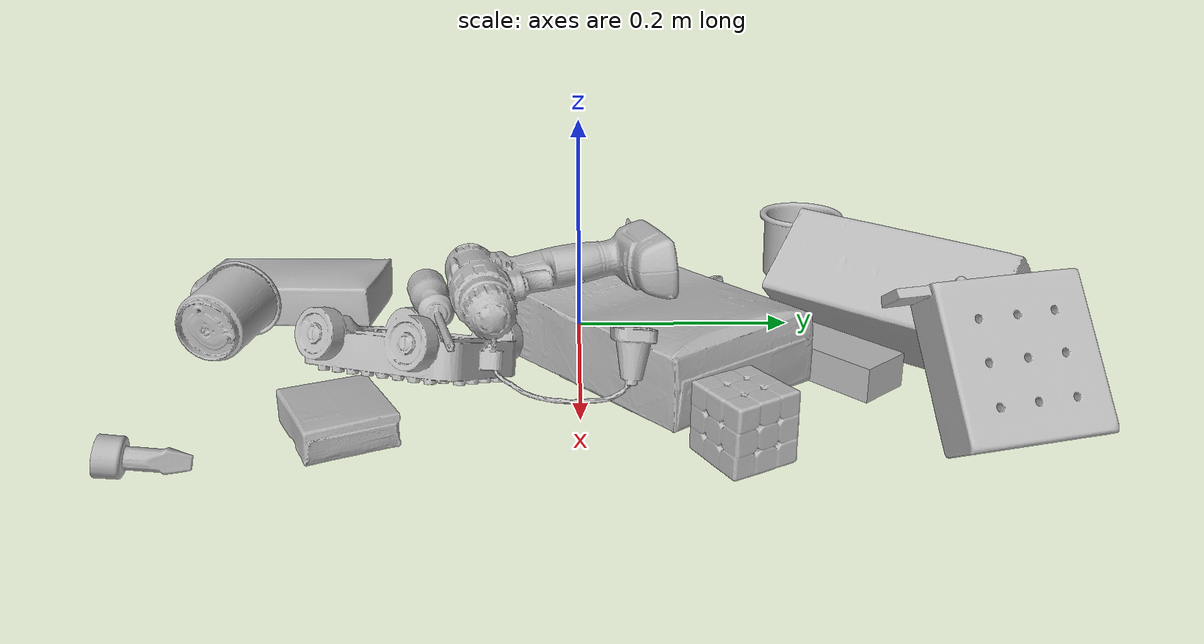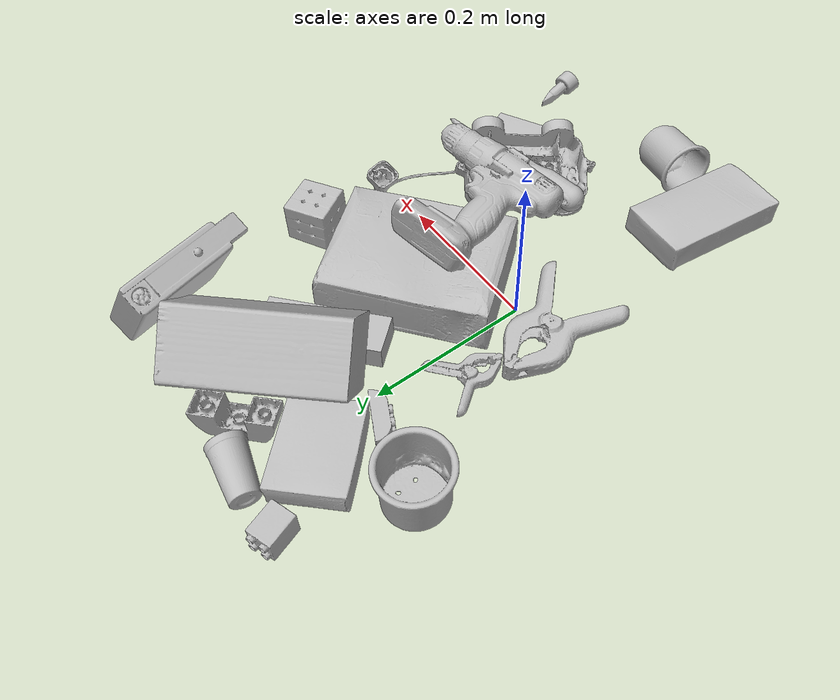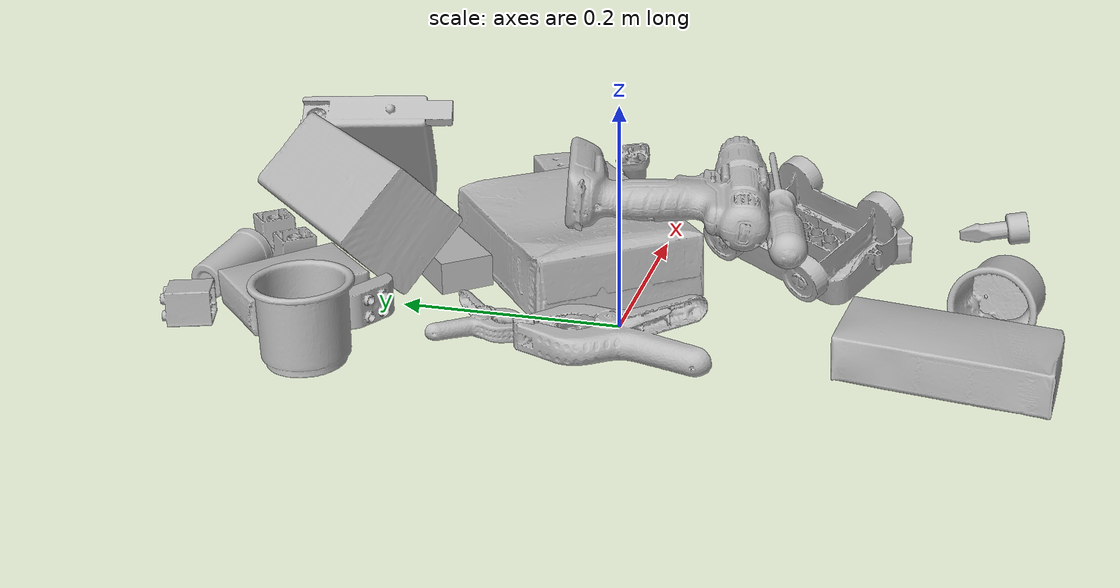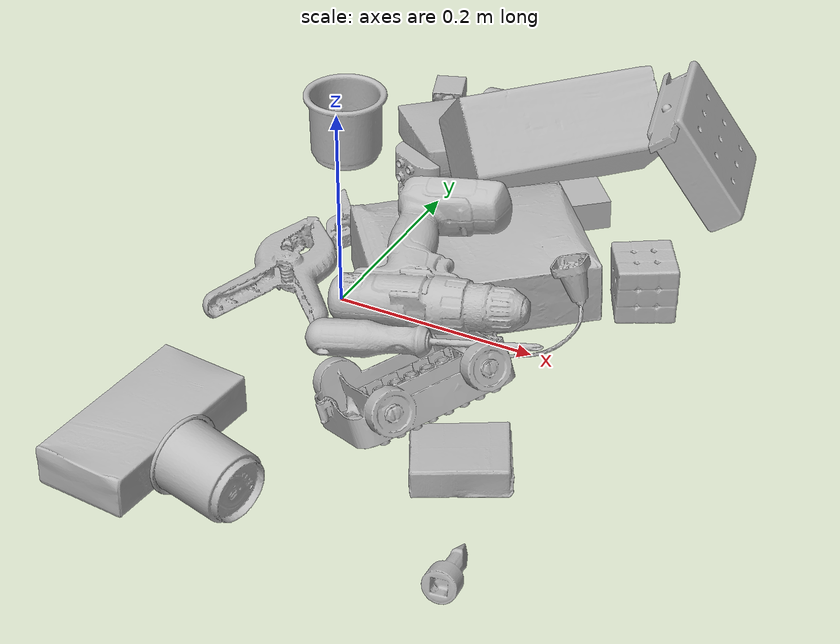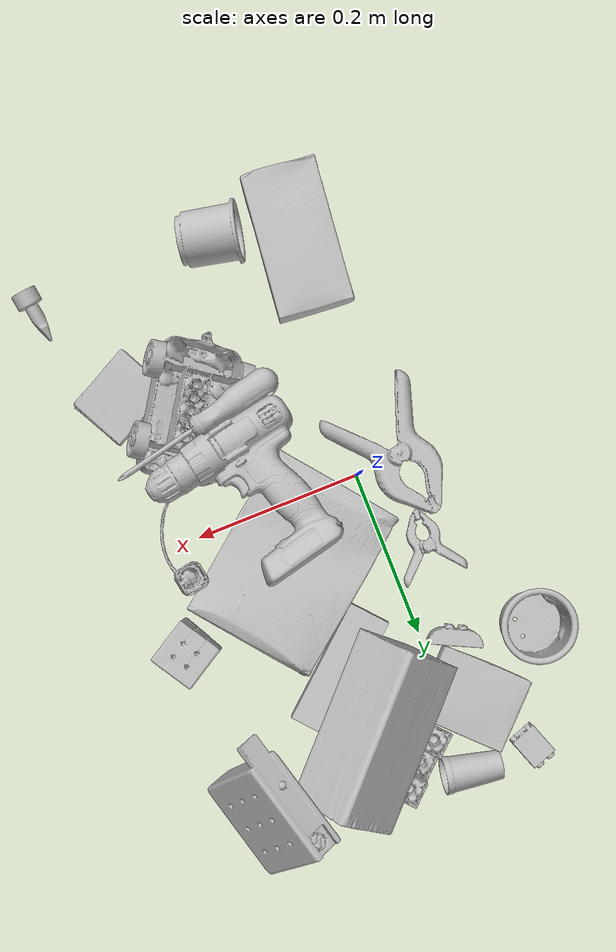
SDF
<sdf version="1.4">
  <world name="default">
    <light name="light1" type="point">
      <pose>0 0 1 0 0 0</pose>
      <diffuse>3 3 3 1</diffuse>
      <specular>3 3 3 1</specular>
    </light>
    <light name="light2" type="point">
      <pose>0 0.5 2 0 0 0</pose>
      <diffuse>1 1 1 1</diffuse>
      <specular>1 1 1 1</specular>
    </light>
    <light name="light3" type="point">
      <pose>0 0.5 2 0 0 0</pose>
      <diffuse>3 3 3 1</diffuse>
      <specular>3 3 3 1</specular>
    </light>
    <scene>
      <ambient>0.7 0.7 0.7</ambient>
    </scene>
    <model name="box21">
      <link name="link_box21">
        <collision name="default">
          <geometry>
            <mesh>
              <uri>model://cracker_box/collision_meshes/collision.obj</uri>
              <scale>1.0 1.0 1.0</scale>
            </mesh>
          </geometry>
          <surface>
            <friction>
              <ode>
                <mu>0.5</mu>
                <mu2>0.5</mu2>
              </ode>
            </friction>
          <contact>
        <ode>
            <max_vel>0</max_vel>
            <min_depth>0.0001</min_depth>
            <kp>1e8</kp>
        </ode>
    </contact></surface>
        </collision>
        <visual name="default">
          <geometry>
            <mesh>
              <uri>model://cracker_box/visual_meshes/visual.dae</uri>
              <scale>1.0 1.0 1.0</scale>
            </mesh>
          </geometry>
        </visual>
        <inertial>
          <mass>2.590176582336426</mass>
          <pose>0.0009464152390137315 0.00025434247800149024 -0.0017029535956680775 -0.0003162072774594163 -0.011106486806667554 0.0025467954652388498</pose>
          <inertia>
            <ixx>0.0065882523</ixx>
            <iyy>0.0108785</iyy>
            <izz>0.015524619</izz>
            <ixy>0</ixy>
            <ixz>0</ixz>
            <iyz>0</iyz>
          </inertia>
        </inertial>
      </link>
      <pose>0.10662852227687836 0.06745849549770355 0.03638406842947006 -0.014046323855364093 -0.005016419550134823 0.672836980480069</pose>
    </model>
    <model name="box22">
      <link name="link_box22">
        <collision name="default">
          <geometry>
            <mesh>
              <uri>model://gelatin_box/collision_meshes/collision.obj</uri>
              <scale>1.0 1.0 1.0</scale>
            </mesh>
          </geometry>
          <surface>
            <friction>
              <ode>
                <mu>0.5</mu>
                <mu2>0.5</mu2>
              </ode>
            </friction>
          <contact>
        <ode>
            <max_vel>0</max_vel>
            <min_depth>0.0001</min_depth>
            <kp>1e8</kp>
        </ode>
    </contact></surface>
        </collision>
        <visual name="default">
          <geometry>
            <mesh>
              <uri>model://gelatin_box/visual_meshes/visual.dae</uri>
              <scale>1.0 1.0 1.0</scale>
            </mesh>
          </geometry>
        </visual>
        <inertial>
          <mass>0.25047940015792847</mass>
          <pose>0.0004319618456065655 0.00011156871914863586 -0.0003640321083366871 -0.0010503719848663328 -0.004755819155031653 0.016440561334722496</pose>
          <inertia>
            <ixx>0.00017681804</ixx>
            <iyy>0.00012630019</iyy>
            <izz>0.0002691564</izz>
            <ixy>0</ixy>
            <ixz>0</ixz>
            <iyz>0</iyz>
          </inertia>
        </inertial>
      </link>
      <pose>0.22248254716396332 -0.18602178990840912 0.01458105631172657 -3.1258322960743565 -0.02568068954582607 -1.0873540034447045</pose>
    </model>
    <model name="box23">
      <link name="link_box23">
        <collision name="default">
          <geometry>
            <mesh>
              <uri>model://pudding_box/collision_meshes/collision.obj</uri>
              <scale>1.0 1.0 1.0</scale>
            </mesh>
          </geometry>
          <surface>
            <friction>
              <ode>
                <mu>0.5</mu>
                <mu2>0.5</mu2>
              </ode>
            </friction>
          <contact>
        <ode>
            <max_vel>0</max_vel>
            <min_depth>0.0001</min_depth>
            <kp>1e8</kp>
        </ode>
    </contact></surface>
        </collision>
        <visual name="default">
          <geometry>
            <mesh>
              <uri>model://pudding_box/visual_meshes/visual.dae</uri>
              <scale>1.0 1.0 1.0</scale>
            </mesh>
          </geometry>
        </visual>
        <inertial>
          <mass>0.39469316601753235</mass>
          <pose>0.0004894821904599667 0.000806788622867316 -0.0005188827635720372 0.005213100892100292 -0.006603796836808699 0.020079821441474487</pose>
          <inertia>
            <ixx>0.00044618026</ixx>
            <iyy>0.00030019323</iyy>
            <izz>0.00065890176</izz>
            <ixy>0</ixy>
            <ixz>0</ixz>
            <iyz>0</iyz>
          </inertia>
        </inertial>
      </link>
      <pose>-0.029706155881285667 0.29140806198120117 0.01972581446170807 0.022371764199078808 -0.011391579306443122 -2.359479923704536</pose>
    </model>
    <model name="cup1">
      <link name="link_cup1">
        <collision name="default">
          <geometry>
            <mesh>
              <uri>model://cup_small/collision_meshes/collision.obj</uri>
              <scale>1.0 1.0 1.0</scale>
            </mesh>
          </geometry>
          <surface>
            <friction>
              <ode>
                <mu>0.5</mu>
                <mu2>0.5</mu2>
              </ode>
            </friction>
          <contact>
        <ode>
            <max_vel>0</max_vel>
            <min_depth>0.0001</min_depth>
            <kp>1e8</kp>
        </ode>
    </contact></surface>
        </collision>
        <visual name="default">
          <geometry>
            <mesh>
              <uri>model://cup_small/visual_meshes/visual.dae</uri>
              <scale>1.0 1.0 1.0</scale>
            </mesh>
          </geometry>
        </visual>
        <inertial>
          <mass>0.021035347133874893</mass>
          <pose>0.0001048244594130665 -0.0003377834218554199 -0.010742821730673313 -0.011493211249102088 -0.015280240526329824 -0.5058153233609384</pose>
          <inertia>
            <ixx>1.2385285e-05</ixx>
            <iyy>1.2449176e-05</iyy>
            <izz>5.591994e-06</izz>
            <ixy>0</ixy>
            <ixz>0</ixz>
            <iyz>0</iyz>
          </inertia>
        </inertial>
      </link>
      <pose>0.0019369013607501984 0.3698262572288513 0.019974566996097565 -1.4626799535290513 -0.60707869005908 -1.8169991384143798</pose>
    </model>
    <model name="cup2">
      <link name="link_cup2">
        <collision name="default">
          <geometry>
            <mesh>
              <uri>model://e_cups/collision_meshes/collision.obj</uri>
              <scale>1.0 1.0 1.0</scale>
            </mesh>
          </geometry>
          <surface>
            <friction>
              <ode>
                <mu>0.5</mu>
                <mu2>0.5</mu2>
              </ode>
            </friction>
          <contact>
        <ode>
            <max_vel>0</max_vel>
            <min_depth>0.0001</min_depth>
            <kp>1e8</kp>
        </ode>
    </contact></surface>
        </collision>
        <visual name="default">
          <geometry>
            <mesh>
              <uri>model://e_cups/visual_meshes/visual.dae</uri>
              <scale>1.0 1.0 1.0</scale>
            </mesh>
          </geometry>
        </visual>
        <inertial>
          <mass>0.053841520100831985</mass>
          <pose>0.0011355747701600194 0.0028797851409763098 -0.0038829720579087734 0.69523823542345 0.08767615215021585 -0.5235238319868403</pose>
          <inertia>
            <ixx>4.7474743e-05</ixx>
            <iyy>4.9617902e-05</iyy>
            <izz>4.5391338e-05</izz>
            <ixy>0</ixy>
            <ixz>0</ixz>
            <iyz>0</iyz>
          </inertia>
        </inertial>
      </link>
      <pose>0.05648671090602875 -0.32026147842407227 0.03480248898267746 -1.334397845817999 1.169861228979799 1.5688959094863122</pose>
    </model>
    <model name="box11">
      <link name="link_box11">
        <collision name="default">
          <geometry>
            <mesh>
              <uri>model://jenga/collision_meshes/collision.obj</uri>
              <scale>1.0 1.0 1.0</scale>
            </mesh>
          </geometry>
          <surface>
            <friction>
              <ode>
                <mu>0.5</mu>
                <mu2>0.5</mu2>
              </ode>
            </friction>
          <contact>
        <ode>
            <max_vel>0</max_vel>
            <min_depth>0.0001</min_depth>
            <kp>1e8</kp>
        </ode>
    </contact></surface>
        </collision>
        <visual name="default">
          <geometry>
            <mesh>
              <uri>model://jenga/visual_meshes/visual.dae</uri>
              <scale>1.0 1.0 1.0</scale>
            </mesh>
          </geometry>
        </visual>
        <inertial>
          <mass>0.26362571120262146</mass>
          <pose>-2.502855807051674e-07 -0.00010250010382151231 -4.0923401684267446e-05 0.0 -7.342155186052628e-07 0.0</pose>
          <inertia>
            <ixx>7.295163e-05</ixx>
            <iyy>0.0004943182</iyy>
            <izz>0.0005277267</izz>
            <ixy>0</ixy>
            <ixz>0</ixz>
            <iyz>0</iyz>
          </inertia>
        </inertial>
      </link>
      <pose>0.10185908526182175 0.2038985788822174 0.014999891631305218 -3.3172274174600206e-05 2.1229881900678422e-06 0.7137308544518748</pose>
    </model>
    <model name="box12">
      <link name="link_box12">
        <collision name="default">
          <geometry>
            <mesh>
              <uri>model://rubiks_cube/collision_meshes/collision.obj</uri>
              <scale>1.0 1.0 1.0</scale>
            </mesh>
          </geometry>
          <surface>
            <friction>
              <ode>
                <mu>0.5</mu>
                <mu2>0.5</mu2>
              </ode>
            </friction>
          <contact>
        <ode>
            <max_vel>0</max_vel>
            <min_depth>0.0001</min_depth>
            <kp>1e8</kp>
        </ode>
    </contact></surface>
        </collision>
        <visual name="default">
          <geometry>
            <mesh>
              <uri>model://rubiks_cube/visual_meshes/visual.dae</uri>
              <scale>1.0 1.0 1.0</scale>
            </mesh>
          </geometry>
        </visual>
        <inertial>
          <mass>0.2476155012845993</mass>
          <pose>2.6721041649580002e-05 5.256966323941015e-05 -7.2643156272533815e-06 -0.05467269607811095 -0.09813983501015876 -0.034455733913541106</pose>
          <inertia>
            <ixx>0.00013682418</ixx>
            <iyy>0.0001361861</iyy>
            <izz>0.00013795799</izz>
            <ixy>0</ixy>
            <ixz>0</ixz>
            <iyz>0</iyz>
          </inertia>
        </inertial>
      </link>
      <pose>0.2598986029624939 0.11937886476516724 0.0286790132522583 2.1390239069708014e-08 3.60761829626869e-09 2.106212993762186</pose>
    </model>
    <model name="box13">
      <link name="link_box13">
        <collision name="default">
          <geometry>
            <mesh>
              <uri>model://sugar_box/collision_meshes/collision.obj</uri>
              <scale>1.0 1.0 1.0</scale>
            </mesh>
          </geometry>
          <surface>
            <friction>
              <ode>
                <mu>0.5</mu>
                <mu2>0.5</mu2>
              </ode>
            </friction>
          <contact>
        <ode>
            <max_vel>0</max_vel>
            <min_depth>0.0001</min_depth>
            <kp>1e8</kp>
        </ode>
    </contact></surface>
        </collision>
        <visual name="default">
          <geometry>
            <mesh>
              <uri>model://sugar_box/visual_meshes/visual.dae</uri>
              <scale>1.0 1.0 1.0</scale>
            </mesh>
          </geometry>
        </visual>
        <inertial>
          <mass>0.6861893534660339</mass>
          <pose>0.0010343727190047503 3.849109634757042e-05 -0.0003636480250861496 -0.00040462627129080113 0.001050663522124822 0.0026153787889376494</pose>
          <inertia>
            <ixx>0.0005717311</ixx>
            <iyy>0.0018479523</iyy>
            <izz>0.0022122194</izz>
            <ixy>0</ixy>
            <ixz>0</ixz>
            <iyz>0</iyz>
          </inertia>
        </inertial>
      </link>
      <pose>-0.03732980042695999 -0.2814788818359375 0.022798603400588036 0.0007759120461768338 -0.0234334658884266 1.4588727599933933</pose>
    </model>
    <model name="box14">
      <link name="link_box14">
        <collision name="default">
          <geometry>
            <mesh>
              <uri>model://wood_block/collision_meshes/collision.obj</uri>
              <scale>1.0 1.0 1.0</scale>
            </mesh>
          </geometry>
          <surface>
            <friction>
              <ode>
                <mu>0.5</mu>
                <mu2>0.5</mu2>
              </ode>
            </friction>
          <contact>
        <ode>
            <max_vel>0</max_vel>
            <min_depth>0.0001</min_depth>
            <kp>1e8</kp>
        </ode>
    </contact></surface>
        </collision>
        <visual name="default">
          <geometry>
            <mesh>
              <uri>model://wood_block/visual_meshes/visual.dae</uri>
              <scale>1.0 1.0 1.0</scale>
            </mesh>
          </geometry>
        </visual>
        <inertial>
          <mass>2.2081377506256104</mass>
          <pose>-5.813315965497168e-06 -0.000570809468626976 0.00026408585836179554 -0.052206634003801496 -0.0051926960857359 -0.00686137798931887</pose>
          <inertia>
            <ixx>0.0029548227</ixx>
            <iyy>0.009334286</iyy>
            <izz>0.0092993695</izz>
            <ixy>0</ixy>
            <ixz>0</ixz>
            <iyz>0</iyz>
          </inertia>
        </inertial>
      </link>
      <pose>0.0903475433588028 0.2798623740673065 0.06148489564657211 -2.339516600915097 -1.2123477219806624e-06 0.8048397667134553</pose>
    </model>
    <model name="cup15">
      <link name="link_cup15">
        <collision name="default">
          <geometry>
            <mesh>
              <uri>model://g_cups/collision_meshes/collision.obj</uri>
              <scale>1.0 1.0 1.0</scale>
            </mesh>
          </geometry>
          <surface>
            <friction>
              <ode>
                <mu>0.5</mu>
                <mu2>0.5</mu2>
              </ode>
            </friction>
          <contact>
        <ode>
            <max_vel>0</max_vel>
            <min_depth>0.0001</min_depth>
            <kp>1e8</kp>
        </ode>
    </contact></surface>
        </collision>
        <visual name="default">
          <geometry>
            <mesh>
              <uri>model://g_cups/visual_meshes/visual.dae</uri>
              <scale>1.0 1.0 1.0</scale>
            </mesh>
          </geometry>
        </visual>
        <inertial>
          <mass>0.09534990042448044</mass>
          <pose>-0.000794626830611378 -4.206429366604425e-05 -0.002132937079295516 -0.21382187015428292 -0.3141046168173621 0.3112040328096479</pose>
          <inertia>
            <ixx>0.00011129469</ixx>
            <iyy>0.0001109161</iyy>
            <izz>0.00011528214</izz>
            <ixy>0</ixy>
            <ixz>0</ixz>
            <iyz>0</iyz>
          </inertia>
        </inertial>
      </link>
      <pose>-0.12711134552955627 0.23663371801376343 0.037202998995780945 -7.683747482723003e-08 -1.2471780677008538e-07 1.5140872938392493</pose>
    </model>
    <model name="toy1">
      <link name="link_toy1">
        <collision name="default">
          <geometry>
            <mesh>
              <uri>model://a_lego_duplo/collision_meshes/collision.obj</uri>
              <scale>1.0 1.0 1.0</scale>
            </mesh>
          </geometry>
          <surface>
            <friction>
              <ode>
                <mu>0.5</mu>
                <mu2>0.5</mu2>
              </ode>
            </friction>
          <contact>
        <ode>
            <max_vel>0</max_vel>
            <min_depth>0.0001</min_depth>
            <kp>1e8</kp>
        </ode>
    </contact></surface>
        </collision>
        <visual name="default">
          <geometry>
            <mesh>
              <uri>model://a_lego_duplo/visual_meshes/visual.dae</uri>
              <scale>1.0 1.0 1.0</scale>
            </mesh>
          </geometry>
        </visual>
        <inertial>
          <mass>0.019288161769509315</mass>
          <pose>-0.00011337728938087821 0.00018517542048357427 0.00036926069878973067 -0.014116980162122142 -0.00012566491180396528 6.141847735431564e-05</pose>
          <inertia>
            <ixx>2.4728956e-06</ixx>
            <iyy>5.539828e-06</iyy>
            <izz>6.86231e-06</izz>
            <ixy>0</ixy>
            <ixz>0</ixz>
            <iyz>0</iyz>
          </inertia>
        </inertial>
      </link>
      <pose>-0.03842104598879814 0.21654705703258514 0.016109975054860115 1.570973245456636 -7.648722465195112e-05 -0.45398420342932333</pose>
    </model>
    <model name="toy2">
      <link name="link_toy2">
        <collision name="default">
          <geometry>
            <mesh>
              <uri>model://nine_hole_peg_test/collision_meshes/collision.obj</uri>
              <scale>1.0 1.0 1.0</scale>
            </mesh>
          </geometry>
          <surface>
            <friction>
              <ode>
                <mu>0.5</mu>
                <mu2>0.5</mu2>
              </ode>
            </friction>
          <contact>
        <ode>
            <max_vel>0</max_vel>
            <min_depth>0.0001</min_depth>
            <kp>1e8</kp>
        </ode>
    </contact></surface>
        </collision>
        <visual name="default">
          <geometry>
            <mesh>
              <uri>model://nine_hole_peg_test/visual_meshes/visual.dae</uri>
              <scale>1.0 1.0 1.0</scale>
            </mesh>
          </geometry>
        </visual>
        <inertial>
          <mass>0.4416040778160095</mass>
          <pose>-0.004617387894541025 -0.009647616185247898 2.646069333422929e-05 -0.001466680632441769 0.0007194151669294288 -0.6342433000636255</pose>
          <inertia>
            <ixx>0.00069052057</ixx>
            <iyy>0.0006447319</iyy>
            <izz>0.0012099957</izz>
            <ixy>0</ixy>
            <ixz>0</ixz>
            <iyz>0</iyz>
          </inertia>
        </inertial>
      </link>
      <pose>0.23396404087543488 0.3123389184474945 0.06742443144321442 -1.9448103530456631e-07 -0.9851091504603023 -2.875042945165867</pose>
    </model>
    <model name="toy3">
      <link name="link_toy3">
        <collision name="default">
          <geometry>
            <mesh>
              <uri>model://b_lego_duplo/collision_meshes/collision.obj</uri>
              <scale>1.0 1.0 1.0</scale>
            </mesh>
          </geometry>
          <surface>
            <friction>
              <ode>
                <mu>0.5</mu>
                <mu2>0.5</mu2>
              </ode>
            </friction>
          <contact>
        <ode>
            <max_vel>0</max_vel>
            <min_depth>0.0001</min_depth>
            <kp>1e8</kp>
        </ode>
    </contact></surface>
        </collision>
        <visual name="default">
          <geometry>
            <mesh>
              <uri>model://b_lego_duplo/visual_meshes/visual.dae</uri>
              <scale>1.0 1.0 1.0</scale>
            </mesh>
          </geometry>
        </visual>
        <inertial>
          <mass>0.05141952633857727</mass>
          <pose>-0.00011053046182496473 -9.15286273084348e-06 0.0019294298253953457 -0.03749504579203769 -0.026353926476799443 0.45190277296460496</pose>
          <inertia>
            <ixx>1.0523392e-05</ixx>
            <iyy>1.0594135e-05</iyy>
            <izz>9.376003e-06</izz>
            <ixy>0</ixy>
            <ixz>0</ixz>
            <iyz>0</iyz>
          </inertia>
        </inertial>
      </link>
      <pose>-0.07516679912805557 0.3714941442012787 0.016179975122213364 0.0505645458043852 -1.5624216305596943 -1.2733744119041477</pose>
    </model>
    <model name="toy4">
      <link name="link_toy4">
        <collision name="default">
          <geometry>
            <mesh>
              <uri>model://e_lego_duplo/collision_meshes/collision.obj</uri>
              <scale>1.0 1.0 1.0</scale>
            </mesh>
          </geometry>
          <surface>
            <friction>
              <ode>
                <mu>0.5</mu>
                <mu2>0.5</mu2>
              </ode>
            </friction>
          <contact>
        <ode>
            <max_vel>0</max_vel>
            <min_depth>0.0001</min_depth>
            <kp>1e8</kp>
        </ode>
    </contact></surface>
        </collision>
        <visual name="default">
          <geometry>
            <mesh>
              <uri>model://e_lego_duplo/visual_meshes/visual.dae</uri>
              <scale>1.0 1.0 1.0</scale>
            </mesh>
          </geometry>
        </visual>
        <inertial>
          <mass>0.10851083695888519</mass>
          <pose>0.0003256036143284291 0.00023485413112211972 0.0019521439680829644 -0.022567807713092337 -6.825385155411165e-05 -0.007625153430497312</pose>
          <inertia>
            <ixx>2.2628092e-05</ixx>
            <iyy>9.28715e-05</iyy>
            <izz>9.0438196e-05</izz>
            <ixy>0</ixy>
            <ixz>0</ixz>
            <iyz>0</iyz>
          </inertia>
        </inertial>
      </link>
      <pose>0.05404813587665558 0.3385847210884094 0.022629227489233017 -3.140122938630871 -0.03993087430867455 -2.403470101860836</pose>
    </model>
    <model name="toy5">
      <link name="link_toy5">
        <collision name="default">
          <geometry>
            <mesh>
              <uri>model://e_toy_airplane/collision_meshes/collision.obj</uri>
              <scale>1.0 1.0 1.0</scale>
            </mesh>
          </geometry>
          <surface>
            <friction>
              <ode>
                <mu>0.5</mu>
                <mu2>0.5</mu2>
              </ode>
            </friction>
          <contact>
        <ode>
            <max_vel>0</max_vel>
            <min_depth>0.0001</min_depth>
            <kp>1e8</kp>
        </ode>
    </contact></surface>
        </collision>
        <visual name="default">
          <geometry>
            <mesh>
              <uri>model://e_toy_airplane/visual_meshes/visual.dae</uri>
              <scale>1.0 1.0 1.0</scale>
            </mesh>
          </geometry>
        </visual>
        <inertial>
          <mass>0.028576364740729332</mass>
          <pose>0.00011740469926735386 -2.248284363304265e-05 -0.011187203228473663 0.005518470588584354 0.009228302056362008 0.15041344019646216</pose>
          <inertia>
            <ixx>8.721834e-06</ixx>
            <iyy>8.6326145e-06</iyy>
            <izz>2.6212538e-06</izz>
            <ixy>0</ixy>
            <ixz>0</ixz>
            <iyz>0</iyz>
          </inertia>
        </inertial>
      </link>
      <pose>0.27939796447753906 -0.3121558725833893 0.012364833615720272 1.7532826211785755 0.3755837270283469 -2.949215396600159</pose>
    </model>
    <model name="toy6">
      <link name="link_toy6">
        <collision name="default">
          <geometry>
            <mesh>
              <uri>model://g_lego_duplo/collision_meshes/collision.obj</uri>
              <scale>1.0 1.0 1.0</scale>
            </mesh>
          </geometry>
          <surface>
            <friction>
              <ode>
                <mu>0.5</mu>
                <mu2>0.5</mu2>
              </ode>
            </friction>
          <contact>
        <ode>
            <max_vel>0</max_vel>
            <min_depth>0.0001</min_depth>
            <kp>1e8</kp>
        </ode>
    </contact></surface>
        </collision>
        <visual name="default">
          <geometry>
            <mesh>
              <uri>model://g_lego_duplo/visual_meshes/visual.dae</uri>
              <scale>1.0 1.0 1.0</scale>
            </mesh>
          </geometry>
        </visual>
        <inertial>
          <mass>0.2849176824092865</mass>
          <pose>-0.050047703087329865 0.0017554622609168291 0.0038806754164397717 0.010963023424049216 0.03810828912622395 -0.09653028734865207</pose>
          <inertia>
            <ixx>0.000412849</ixx>
            <iyy>0.0012481753</iyy>
            <izz>0.0015615128</izz>
            <ixy>0</ixy>
            <ixz>0</ixz>
            <iyz>0</iyz>
          </inertia>
        </inertial>
      </link>
      <pose>0.18003882467746735 -0.08644148707389832 0.04969920217990875 2.818096907675693 -0.12415278364997642 1.018320305579395</pose>
    </model>
    <model name="hardware1">
      <link name="link_hardware1">
        <collision name="default">
          <geometry>
            <mesh>
              <uri>model://large_clamp/collision_meshes/collision.obj</uri>
              <scale>1.0 1.0 1.0</scale>
            </mesh>
          </geometry>
          <surface>
            <friction>
              <ode>
                <mu>0.5</mu>
                <mu2>0.5</mu2>
              </ode>
            </friction>
          <contact>
        <ode>
            <max_vel>0</max_vel>
            <min_depth>0.0001</min_depth>
            <kp>1e8</kp>
        </ode>
    </contact></surface>
        </collision>
        <visual name="default">
          <geometry>
            <mesh>
              <uri>model://large_clamp/visual_meshes/visual.dae</uri>
              <scale>1.0 1.0 1.0</scale>
            </mesh>
          </geometry>
        </visual>
        <inertial>
          <mass>0.15191641449928284</mass>
          <pose>0.006369356997311115 0.00035856704926118255 -0.00018398075189907104 -0.0021330805905738653 0.00967158570552682 0.02663313568730603</pose>
          <inertia>
            <ixx>0.00013403181</ixx>
            <iyy>0.0002545337</iyy>
            <izz>0.00036821538</izz>
            <ixy>0</ixy>
            <ixz>0</ixz>
            <iyz>0</iyz>
          </inertia>
        </inertial>
      </link>
      <pose>-0.05422499403357506 -0.005484042223542929 0.018060654401779175 3.1217803775475077 0.017985613048087067 1.805575624689033</pose>
    </model>
    <model name="hardware2">
      <link name="link_hardware2">
        <collision name="default">
          <geometry>
            <mesh>
              <uri>model://phillips_screwdriver/collision_meshes/collision.obj</uri>
              <scale>1.0 1.0 1.0</scale>
            </mesh>
          </geometry>
          <surface>
            <friction>
              <ode>
                <mu>0.5</mu>
                <mu2>0.5</mu2>
              </ode>
            </friction>
          <contact>
        <ode>
            <max_vel>0</max_vel>
            <min_depth>0.0001</min_depth>
            <kp>1e8</kp>
        </ode>
    </contact></surface>
        </collision>
        <visual name="default">
          <geometry>
            <mesh>
              <uri>model://phillips_screwdriver/visual_meshes/visual.dae</uri>
              <scale>1.0 1.0 1.0</scale>
            </mesh>
          </geometry>
        </visual>
        <inertial>
          <mass>0.09855502843856812</mass>
          <pose>-0.04777182266116142 0.001036230125464499 -0.00045555492397397757 -0.15717104537538515 0.005850995063257979 -0.0021567379341223374</pose>
          <inertia>
            <ixx>1.15792045e-05</ixx>
            <iyy>0.00014518296</iyy>
            <izz>0.00014530632</izz>
            <ixy>0</ixy>
            <ixz>0</ixz>
            <iyz>0</iyz>
          </inertia>
        </inertial>
      </link>
      <pose>0.14679448306560516 -0.11625033617019653 0.07133955508470535 -2.930411938071367 -0.11164959893992868 0.2232392135793357</pose>
    </model>
    <model name="hardware3">
      <link name="link_hardware3">
        <collision name="default">
          <geometry>
            <mesh>
              <uri>model://power_drill/collision_meshes/collision.obj</uri>
              <scale>1.0 1.0 1.0</scale>
            </mesh>
          </geometry>
          <surface>
            <friction>
              <ode>
                <mu>0.5</mu>
                <mu2>0.5</mu2>
              </ode>
            </friction>
          <contact>
        <ode>
            <max_vel>0</max_vel>
            <min_depth>0.0001</min_depth>
            <kp>1e8</kp>
        </ode>
    </contact></surface>
        </collision>
        <visual name="default">
          <geometry>
            <mesh>
              <uri>model://power_drill/visual_meshes/visual.dae</uri>
              <scale>1.0 1.0 1.0</scale>
            </mesh>
          </geometry>
        </visual>
        <inertial>
          <mass>0.8579708337783813</mass>
          <pose>-0.01478054840117693 0.01436943281441927 0.0012414173688739538 0.004609163561922946 0.004073017669368797 -0.18362705043487879</pose>
          <inertia>
            <ixx>0.0034962718</ixx>
            <iyy>0.0013756006</iyy>
            <izz>0.0046174442</izz>
            <ixy>0</ixy>
            <ixz>0</ixz>
            <iyz>0</iyz>
          </inertia>
        </inertial>
      </link>
      <pose>0.123289093375206 -0.016768649220466614 0.09326545894145966 -3.0679085570035 -0.09749653427047718 0.20614031247802336</pose>
    </model>
    <model name="hardware4">
      <link name="link_hardware4">
        <collision name="default">
          <geometry>
            <mesh>
              <uri>model://medium_clamp/collision_meshes/collision.obj</uri>
              <scale>1.0 1.0 1.0</scale>
            </mesh>
          </geometry>
          <surface>
            <friction>
              <ode>
                <mu>0.5</mu>
                <mu2>0.5</mu2>
              </ode>
            </friction>
          <contact>
        <ode>
            <max_vel>0</max_vel>
            <min_depth>0.0001</min_depth>
            <kp>1e8</kp>
        </ode>
    </contact></surface>
        </collision>
        <visual name="default">
          <geometry>
            <mesh>
              <uri>model://medium_clamp/visual_meshes/visual.dae</uri>
              <scale>1.0 1.0 1.0</scale>
            </mesh>
          </geometry>
        </visual>
        <inertial>
          <mass>0.019661318510770798</mass>
          <pose>0.005390993319451809 0.0003953249251935631 -0.00012221586075611413 -0.0012269159857183107 0.002584502991641296 0.038207758549707246</pose>
          <inertia>
            <ixx>5.356451e-06</ixx>
            <iyy>7.795151e-06</iyy>
            <izz>1.2006867e-05</izz>
            <ixy>0</ixy>
            <ixz>0</ixz>
            <iyz>0</iyz>
          </inertia>
        </inertial>
      </link>
      <pose>-0.046843525022268295 0.10870812088251114 0.013512707315385342 0.048255493395202104 0.07000979918207222 -1.640791538012735</pose>
    </model>
  <physics type="ode">
      <max_contacts>50</max_contacts>
      <ode>
        <solver>
          <type>quick</type>
          <iters>75</iters>
        </solver>
        <constraints>
          <contact_max_correcting_vel>0</contact_max_correcting_vel>
          <contact_surface_layer>0</contact_surface_layer>
        </constraints>
      </ode>
    </physics></world>
</sdf>
